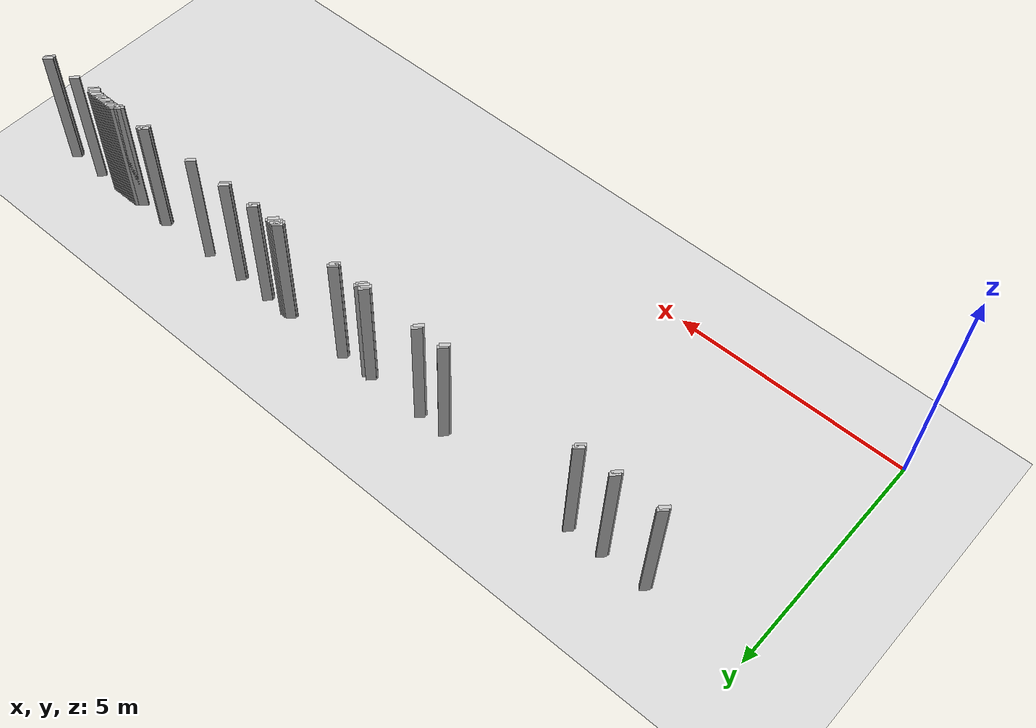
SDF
<sdf version="1.5">
 <world name="default">
  <include><uri>model://ground_plane</uri></include>
  <include><uri>model://sun</uri></include>
  <model name="grey_wall_3022">
   <static>1</static>
   <link name="link">
    <pose>14.25 5.050000000000001  1.4 0 0 -0.7853981633974483</pose>
    <collision name="collision">
     <geometry><box><size>0.07071067811865576 .2  2.8</size></box></geometry>
    </collision>
    <visual name="visual">
     <cast_shadows>0</cast_shadows>
     <geometry><box><size>0.07071067811865576 .2  2.8</size></box></geometry>
    </visual>
   </link>
  </model>
  <model name="grey_wall_3023">
   <static>1</static>
   <link name="link">
    <pose>14.3 5.050000000000001  1.4 0 0 -0.7853981633974483</pose>
    <collision name="collision">
     <geometry><box><size>0.07071067811865576 .2  2.8</size></box></geometry>
    </collision>
    <visual name="visual">
     <cast_shadows>0</cast_shadows>
     <geometry><box><size>0.07071067811865576 .2  2.8</size></box></geometry>
    </visual>
   </link>
  </model>
  <model name="grey_wall_3024">
   <static>1</static>
   <link name="link">
    <pose>15.05 5.050000000000001  1.4 0 0 -0.7853981633974483</pose>
    <collision name="collision">
     <geometry><box><size>0.07071067811865576 .2  2.8</size></box></geometry>
    </collision>
    <visual name="visual">
     <cast_shadows>0</cast_shadows>
     <geometry><box><size>0.07071067811865576 .2  2.8</size></box></geometry>
    </visual>
   </link>
  </model>
  <model name="grey_wall_3025">
   <static>1</static>
   <link name="link">
    <pose>15.100000000000001 5.050000000000001  1.4 0 0 -0.7853981633974483</pose>
    <collision name="collision">
     <geometry><box><size>0.07071067811865576 .2  2.8</size></box></geometry>
    </collision>
    <visual name="visual">
     <cast_shadows>0</cast_shadows>
     <geometry><box><size>0.07071067811865576 .2  2.8</size></box></geometry>
    </visual>
   </link>
  </model>
  <model name="grey_wall_3026">
   <static>1</static>
   <link name="link">
    <pose>15.15 5.050000000000001  1.4 0 0 -0.7853981633974483</pose>
    <collision name="collision">
     <geometry><box><size>0.07071067811865576 .2  2.8</size></box></geometry>
    </collision>
    <visual name="visual">
     <cast_shadows>0</cast_shadows>
     <geometry><box><size>0.07071067811865576 .2  2.8</size></box></geometry>
    </visual>
   </link>
  </model>
  <model name="grey_wall_3027">
   <static>1</static>
   <link name="link">
    <pose>15.200000000000001 5.050000000000001  1.4 0 0 -0.7853981633974483</pose>
    <collision name="collision">
     <geometry><box><size>0.07071067811865576 .2  2.8</size></box></geometry>
    </collision>
    <visual name="visual">
     <cast_shadows>0</cast_shadows>
     <geometry><box><size>0.07071067811865576 .2  2.8</size></box></geometry>
    </visual>
   </link>
  </model>
  <model name="grey_wall_3028">
   <static>1</static>
   <link name="link">
    <pose>15.25 5.050000000000001  1.4 0 0 -0.7853981633974483</pose>
    <collision name="collision">
     <geometry><box><size>0.07071067811865576 .2  2.8</size></box></geometry>
    </collision>
    <visual name="visual">
     <cast_shadows>0</cast_shadows>
     <geometry><box><size>0.07071067811865576 .2  2.8</size></box></geometry>
    </visual>
   </link>
  </model>
  <model name="grey_wall_3029">
   <static>1</static>
   <link name="link">
    <pose>15.3 5.050000000000001  1.4 0 0 -0.7853981633974483</pose>
    <collision name="collision">
     <geometry><box><size>0.07071067811865576 .2  2.8</size></box></geometry>
    </collision>
    <visual name="visual">
     <cast_shadows>0</cast_shadows>
     <geometry><box><size>0.07071067811865576 .2  2.8</size></box></geometry>
    </visual>
   </link>
  </model>
  <model name="grey_wall_3030">
   <static>1</static>
   <link name="link">
    <pose>15.350000000000001 5.050000000000001  1.4 0 0 -0.7853981633974483</pose>
    <collision name="collision">
     <geometry><box><size>0.07071067811865576 .2  2.8</size></box></geometry>
    </collision>
    <visual name="visual">
     <cast_shadows>0</cast_shadows>
     <geometry><box><size>0.07071067811865576 .2  2.8</size></box></geometry>
    </visual>
   </link>
  </model>
  <model name="grey_wall_3031">
   <static>1</static>
   <link name="link">
    <pose>15.4 5.050000000000001  1.4 0 0 -0.7853981633974483</pose>
    <collision name="collision">
     <geometry><box><size>0.07071067811865576 .2  2.8</size></box></geometry>
    </collision>
    <visual name="visual">
     <cast_shadows>0</cast_shadows>
     <geometry><box><size>0.07071067811865576 .2  2.8</size></box></geometry>
    </visual>
   </link>
  </model>
  <model name="grey_wall_3032">
   <static>1</static>
   <link name="link">
    <pose>15.450000000000001 5.050000000000001  1.4 0 0 -0.7853981633974483</pose>
    <collision name="collision">
     <geometry><box><size>0.07071067811865576 .2  2.8</size></box></geometry>
    </collision>
    <visual name="visual">
     <cast_shadows>0</cast_shadows>
     <geometry><box><size>0.07071067811865576 .2  2.8</size></box></geometry>
    </visual>
   </link>
  </model>
  <model name="grey_wall_3033">
   <static>1</static>
   <link name="link">
    <pose>15.5 5.050000000000001  1.4 0 0 -0.7853981633974483</pose>
    <collision name="collision">
     <geometry><box><size>0.07071067811865576 .2  2.8</size></box></geometry>
    </collision>
    <visual name="visual">
     <cast_shadows>0</cast_shadows>
     <geometry><box><size>0.07071067811865576 .2  2.8</size></box></geometry>
    </visual>
   </link>
  </model>
  <model name="grey_wall_3034">
   <static>1</static>
   <link name="link">
    <pose>15.55 5.050000000000001  1.4 0 0 -0.7853981633974483</pose>
    <collision name="collision">
     <geometry><box><size>0.07071067811865576 .2  2.8</size></box></geometry>
    </collision>
    <visual name="visual">
     <cast_shadows>0</cast_shadows>
     <geometry><box><size>0.07071067811865576 .2  2.8</size></box></geometry>
    </visual>
   </link>
  </model>
  <model name="grey_wall_3035">
   <static>1</static>
   <link name="link">
    <pose>15.600000000000001 5.050000000000001  1.4 0 0 -0.7853981633974483</pose>
    <collision name="collision">
     <geometry><box><size>0.07071067811865576 .2  2.8</size></box></geometry>
    </collision>
    <visual name="visual">
     <cast_shadows>0</cast_shadows>
     <geometry><box><size>0.07071067811865576 .2  2.8</size></box></geometry>
    </visual>
   </link>
  </model>
  <model name="grey_wall_3036">
   <static>1</static>
   <link name="link">
    <pose>15.65 5.050000000000001  1.4 0 0 -0.7853981633974483</pose>
    <collision name="collision">
     <geometry><box><size>0.07071067811865576 .2  2.8</size></box></geometry>
    </collision>
    <visual name="visual">
     <cast_shadows>0</cast_shadows>
     <geometry><box><size>0.07071067811865576 .2  2.8</size></box></geometry>
    </visual>
   </link>
  </model>
  <model name="grey_wall_3037">
   <static>1</static>
   <link name="link">
    <pose>15.700000000000001 5.050000000000001  1.4 0 0 -0.7853981633974483</pose>
    <collision name="collision">
     <geometry><box><size>0.07071067811865576 .2  2.8</size></box></geometry>
    </collision>
    <visual name="visual">
     <cast_shadows>0</cast_shadows>
     <geometry><box><size>0.07071067811865576 .2  2.8</size></box></geometry>
    </visual>
   </link>
  </model>
  <model name="grey_wall_3038">
   <static>1</static>
   <link name="link">
    <pose>16.25 5.050000000000001  1.4 0 0 -0.7853981633974838</pose>
    <collision name="collision">
     <geometry><box><size>0.07071067811865325 .2  2.8</size></box></geometry>
    </collision>
    <visual name="visual">
     <cast_shadows>0</cast_shadows>
     <geometry><box><size>0.07071067811865325 .2  2.8</size></box></geometry>
    </visual>
   </link>
  </model>
  <model name="grey_wall_3039">
   <static>1</static>
   <link name="link">
    <pose>17.05 5.050000000000001  1.4 0 0 -0.7853981633974838</pose>
    <collision name="collision">
     <geometry><box><size>0.07071067811865325 .2  2.8</size></box></geometry>
    </collision>
    <visual name="visual">
     <cast_shadows>0</cast_shadows>
     <geometry><box><size>0.07071067811865325 .2  2.8</size></box></geometry>
    </visual>
   </link>
  </model>
  <model name="grey_wall_3040">
   <static>1</static>
   <link name="link">
    <pose>2.0500000000000003 5.0  1.4 0 0 -0.7853981633974572</pose>
    <collision name="collision">
     <geometry><box><size>0.07071067811865513 .2  2.8</size></box></geometry>
    </collision>
    <visual name="visual">
     <cast_shadows>0</cast_shadows>
     <geometry><box><size>0.07071067811865513 .2  2.8</size></box></geometry>
    </visual>
   </link>
  </model>
  <model name="grey_wall_3041">
   <static>1</static>
   <link name="link">
    <pose>3.0 5.0  1.4 0 0 -0.7853981633974572</pose>
    <collision name="collision">
     <geometry><box><size>0.07071067811865513 .2  2.8</size></box></geometry>
    </collision>
    <visual name="visual">
     <cast_shadows>0</cast_shadows>
     <geometry><box><size>0.07071067811865513 .2  2.8</size></box></geometry>
    </visual>
   </link>
  </model>
  <model name="grey_wall_3042">
   <static>1</static>
   <link name="link">
    <pose>3.75 5.0  1.4 0 0 -0.7853981633974572</pose>
    <collision name="collision">
     <geometry><box><size>0.07071067811865513 .2  2.8</size></box></geometry>
    </collision>
    <visual name="visual">
     <cast_shadows>0</cast_shadows>
     <geometry><box><size>0.07071067811865513 .2  2.8</size></box></geometry>
    </visual>
   </link>
  </model>
  <model name="grey_wall_3043">
   <static>1</static>
   <link name="link">
    <pose>6.7 5.0  1.4 0 0 -0.7853981633974483</pose>
    <collision name="collision">
     <geometry><box><size>0.07071067811865576 .2  2.8</size></box></geometry>
    </collision>
    <visual name="visual">
     <cast_shadows>0</cast_shadows>
     <geometry><box><size>0.07071067811865576 .2  2.8</size></box></geometry>
    </visual>
   </link>
  </model>
  <model name="grey_wall_3044">
   <static>1</static>
   <link name="link">
    <pose>7.300000000000001 5.0  1.4 0 0 -0.7853981633974483</pose>
    <collision name="collision">
     <geometry><box><size>0.07071067811865576 .2  2.8</size></box></geometry>
    </collision>
    <visual name="visual">
     <cast_shadows>0</cast_shadows>
     <geometry><box><size>0.07071067811865576 .2  2.8</size></box></geometry>
    </visual>
   </link>
  </model>
  <model name="grey_wall_3045">
   <static>1</static>
   <link name="link">
    <pose>8.55 5.0  1.4 0 0 -0.7853981633974483</pose>
    <collision name="collision">
     <geometry><box><size>0.07071067811865576 .2  2.8</size></box></geometry>
    </collision>
    <visual name="visual">
     <cast_shadows>0</cast_shadows>
     <geometry><box><size>0.07071067811865576 .2  2.8</size></box></geometry>
    </visual>
   </link>
  </model>
  <model name="grey_wall_3046">
   <static>1</static>
   <link name="link">
    <pose>8.65 5.0  1.4 0 0 -0.7853981633974483</pose>
    <collision name="collision">
     <geometry><box><size>0.07071067811865576 .2  2.8</size></box></geometry>
    </collision>
    <visual name="visual">
     <cast_shadows>0</cast_shadows>
     <geometry><box><size>0.07071067811865576 .2  2.8</size></box></geometry>
    </visual>
   </link>
  </model>
  <model name="grey_wall_3047">
   <static>1</static>
   <link name="link">
    <pose>9.3 5.0  1.4 0 0 -0.7853981633974483</pose>
    <collision name="collision">
     <geometry><box><size>0.07071067811865576 .2  2.8</size></box></geometry>
    </collision>
    <visual name="visual">
     <cast_shadows>0</cast_shadows>
     <geometry><box><size>0.07071067811865576 .2  2.8</size></box></geometry>
    </visual>
   </link>
  </model>
  <model name="grey_wall_3048">
   <static>1</static>
   <link name="link">
    <pose>10.700000000000001 5.0  1.4 0 0 -0.7853981633974483</pose>
    <collision name="collision">
     <geometry><box><size>0.07071067811865576 .2  2.8</size></box></geometry>
    </collision>
    <visual name="visual">
     <cast_shadows>0</cast_shadows>
     <geometry><box><size>0.07071067811865576 .2  2.8</size></box></geometry>
    </visual>
   </link>
  </model>
  <model name="grey_wall_3049">
   <static>1</static>
   <link name="link">
    <pose>10.75 5.0  1.4 0 0 -0.7853981633974483</pose>
    <collision name="collision">
     <geometry><box><size>0.07071067811865576 .2  2.8</size></box></geometry>
    </collision>
    <visual name="visual">
     <cast_shadows>0</cast_shadows>
     <geometry><box><size>0.07071067811865576 .2  2.8</size></box></geometry>
    </visual>
   </link>
  </model>
  <model name="grey_wall_3050">
   <static>1</static>
   <link name="link">
    <pose>10.8 5.0  1.4 0 0 -0.7853981633974483</pose>
    <collision name="collision">
     <geometry><box><size>0.07071067811865576 .2  2.8</size></box></geometry>
    </collision>
    <visual name="visual">
     <cast_shadows>0</cast_shadows>
     <geometry><box><size>0.07071067811865576 .2  2.8</size></box></geometry>
    </visual>
   </link>
  </model>
  <model name="grey_wall_3051">
   <static>1</static>
   <link name="link">
    <pose>10.850000000000001 5.0  1.4 0 0 -0.7853981633974483</pose>
    <collision name="collision">
     <geometry><box><size>0.07071067811865576 .2  2.8</size></box></geometry>
    </collision>
    <visual name="visual">
     <cast_shadows>0</cast_shadows>
     <geometry><box><size>0.07071067811865576 .2  2.8</size></box></geometry>
    </visual>
   </link>
  </model>
  <model name="grey_wall_3052">
   <static>1</static>
   <link name="link">
    <pose>11.350000000000001 5.0  1.4 0 0 -0.7853981633974483</pose>
    <collision name="collision">
     <geometry><box><size>0.07071067811865576 .2  2.8</size></box></geometry>
    </collision>
    <visual name="visual">
     <cast_shadows>0</cast_shadows>
     <geometry><box><size>0.07071067811865576 .2  2.8</size></box></geometry>
    </visual>
   </link>
  </model>
  <model name="grey_wall_3053">
   <static>1</static>
   <link name="link">
    <pose>12.100000000000001 5.0  1.4 0 0 -0.7853981633974483</pose>
    <collision name="collision">
     <geometry><box><size>0.07071067811865576 .2  2.8</size></box></geometry>
    </collision>
    <visual name="visual">
     <cast_shadows>0</cast_shadows>
     <geometry><box><size>0.07071067811865576 .2  2.8</size></box></geometry>
    </visual>
   </link>
  </model>
  <model name="grey_wall_3054">
   <static>1</static>
   <link name="link">
    <pose>13.0 5.0  1.4 0 0 -0.7853981633974483</pose>
    <collision name="collision">
     <geometry><box><size>0.07071067811865576 .2  2.8</size></box></geometry>
    </collision>
    <visual name="visual">
     <cast_shadows>0</cast_shadows>
     <geometry><box><size>0.07071067811865576 .2  2.8</size></box></geometry>
    </visual>
   </link>
  </model>
  <model name="grey_wall_3055">
   <static>1</static>
   <link name="link">
    <pose>14.25 5.0  1.4 0 0 -0.7853981633974483</pose>
    <collision name="collision">
     <geometry><box><size>0.07071067811865576 .2  2.8</size></box></geometry>
    </collision>
    <visual name="visual">
     <cast_shadows>0</cast_shadows>
     <geometry><box><size>0.07071067811865576 .2  2.8</size></box></geometry>
    </visual>
   </link>
  </model>
  <model name="grey_wall_3056">
   <static>1</static>
   <link name="link">
    <pose>15.0 5.0  1.4 0 0 -0.7853981633974483</pose>
    <collision name="collision">
     <geometry><box><size>0.07071067811865576 .2  2.8</size></box></geometry>
    </collision>
    <visual name="visual">
     <cast_shadows>0</cast_shadows>
     <geometry><box><size>0.07071067811865576 .2  2.8</size></box></geometry>
    </visual>
   </link>
  </model>
  <model name="grey_wall_3057">
   <static>1</static>
   <link name="link">
    <pose>15.05 5.0  1.4 0 0 -0.7853981633974483</pose>
    <collision name="collision">
     <geometry><box><size>0.07071067811865576 .2  2.8</size></box></geometry>
    </collision>
    <visual name="visual">
     <cast_shadows>0</cast_shadows>
     <geometry><box><size>0.07071067811865576 .2  2.8</size></box></geometry>
    </visual>
   </link>
  </model>
  <model name="grey_wall_3058">
   <static>1</static>
   <link name="link">
    <pose>15.700000000000001 5.0  1.4 0 0 -0.7853981633974483</pose>
    <collision name="collision">
     <geometry><box><size>0.07071067811865576 .2  2.8</size></box></geometry>
    </collision>
    <visual name="visual">
     <cast_shadows>0</cast_shadows>
     <geometry><box><size>0.07071067811865576 .2  2.8</size></box></geometry>
    </visual>
   </link>
  </model>
  <model name="grey_wall_3059">
   <static>1</static>
   <link name="link">
    <pose>15.75 5.0  1.4 0 0 -0.7853981633974483</pose>
    <collision name="collision">
     <geometry><box><size>0.07071067811865576 .2  2.8</size></box></geometry>
    </collision>
    <visual name="visual">
     <cast_shadows>0</cast_shadows>
     <geometry><box><size>0.07071067811865576 .2  2.8</size></box></geometry>
    </visual>
   </link>
  </model>
  <model name="grey_wall_3060">
   <static>1</static>
   <link name="link">
    <pose>17.05 5.0  1.4 0 0 -0.7853981633974838</pose>
    <collision name="collision">
     <geometry><box><size>0.07071067811865325 .2  2.8</size></box></geometry>
    </collision>
    <visual name="visual">
     <cast_shadows>0</cast_shadows>
     <geometry><box><size>0.07071067811865325 .2  2.8</size></box></geometry>
    </visual>
   </link>
  </model>
  <model name="grey_wall_3061">
   <static>1</static>
   <link name="link">
    <pose>2.0500000000000003 4.95  1.4 0 0 -0.7853981633974572</pose>
    <collision name="collision">
     <geometry><box><size>0.07071067811865513 .2  2.8</size></box></geometry>
    </collision>
    <visual name="visual">
     <cast_shadows>0</cast_shadows>
     <geometry><box><size>0.07071067811865513 .2  2.8</size></box></geometry>
    </visual>
   </link>
  </model>
  <model name="grey_wall_3062">
   <static>1</static>
   <link name="link">
    <pose>3.0 4.95  1.4 0 0 -0.7853981633974572</pose>
    <collision name="collision">
     <geometry><box><size>0.07071067811865513 .2  2.8</size></box></geometry>
    </collision>
    <visual name="visual">
     <cast_shadows>0</cast_shadows>
     <geometry><box><size>0.07071067811865513 .2  2.8</size></box></geometry>
    </visual>
   </link>
  </model>
  <model name="grey_wall_3063">
   <static>1</static>
   <link name="link">
    <pose>3.75 4.95  1.4 0 0 -0.7853981633974572</pose>
    <collision name="collision">
     <geometry><box><size>0.07071067811865513 .2  2.8</size></box></geometry>
    </collision>
    <visual name="visual">
     <cast_shadows>0</cast_shadows>
     <geometry><box><size>0.07071067811865513 .2  2.8</size></box></geometry>
    </visual>
   </link>
  </model>
  <model name="grey_wall_3064">
   <static>1</static>
   <link name="link">
    <pose>6.7 4.95  1.4 0 0 -0.7853981633974483</pose>
    <collision name="collision">
     <geometry><box><size>0.07071067811865576 .2  2.8</size></box></geometry>
    </collision>
    <visual name="visual">
     <cast_shadows>0</cast_shadows>
     <geometry><box><size>0.07071067811865576 .2  2.8</size></box></geometry>
    </visual>
   </link>
  </model>
  <model name="grey_wall_3065">
   <static>1</static>
   <link name="link">
    <pose>7.300000000000001 4.95  1.4 0 0 -0.7853981633974483</pose>
    <collision name="collision">
     <geometry><box><size>0.07071067811865576 .2  2.8</size></box></geometry>
    </collision>
    <visual name="visual">
     <cast_shadows>0</cast_shadows>
     <geometry><box><size>0.07071067811865576 .2  2.8</size></box></geometry>
    </visual>
   </link>
  </model>
  <model name="grey_wall_3066">
   <static>1</static>
   <link name="link">
    <pose>8.55 4.95  1.4 0 0 -0.7853981633974483</pose>
    <collision name="collision">
     <geometry><box><size>0.07071067811865576 .2  2.8</size></box></geometry>
    </collision>
    <visual name="visual">
     <cast_shadows>0</cast_shadows>
     <geometry><box><size>0.07071067811865576 .2  2.8</size></box></geometry>
    </visual>
   </link>
  </model>
  <model name="grey_wall_3067">
   <static>1</static>
   <link name="link">
    <pose>8.6 4.95  1.4 0 0 -0.7853981633974483</pose>
    <collision name="collision">
     <geometry><box><size>0.07071067811865576 .2  2.8</size></box></geometry>
    </collision>
    <visual name="visual">
     <cast_shadows>0</cast_shadows>
     <geometry><box><size>0.07071067811865576 .2  2.8</size></box></geometry>
    </visual>
   </link>
  </model>
  <model name="grey_wall_3068">
   <static>1</static>
   <link name="link">
    <pose>8.65 4.95  1.4 0 0 -0.7853981633974483</pose>
    <collision name="collision">
     <geometry><box><size>0.07071067811865576 .2  2.8</size></box></geometry>
    </collision>
    <visual name="visual">
     <cast_shadows>0</cast_shadows>
     <geometry><box><size>0.07071067811865576 .2  2.8</size></box></geometry>
    </visual>
   </link>
  </model>
  <model name="grey_wall_3069">
   <static>1</static>
   <link name="link">
    <pose>9.3 4.95  1.4 0 0 -0.7853981633974483</pose>
    <collision name="collision">
     <geometry><box><size>0.07071067811865576 .2  2.8</size></box></geometry>
    </collision>
    <visual name="visual">
     <cast_shadows>0</cast_shadows>
     <geometry><box><size>0.07071067811865576 .2  2.8</size></box></geometry>
    </visual>
   </link>
  </model>
  <model name="grey_wall_3070">
   <static>1</static>
   <link name="link">
    <pose>10.700000000000001 4.95  1.4 0 0 -0.7853981633974483</pose>
    <collision name="collision">
     <geometry><box><size>0.07071067811865576 .2  2.8</size></box></geometry>
    </collision>
    <visual name="visual">
     <cast_shadows>0</cast_shadows>
     <geometry><box><size>0.07071067811865576 .2  2.8</size></box></geometry>
    </visual>
   </link>
  </model>
  <model name="grey_wall_3071">
   <static>1</static>
   <link name="link">
    <pose>10.75 4.95  1.4 0 0 -0.7853981633974483</pose>
    <collision name="collision">
     <geometry><box><size>0.07071067811865576 .2  2.8</size></box></geometry>
    </collision>
    <visual name="visual">
     <cast_shadows>0</cast_shadows>
     <geometry><box><size>0.07071067811865576 .2  2.8</size></box></geometry>
    </visual>
   </link>
  </model>
  <model name="grey_wall_3072">
   <static>1</static>
   <link name="link">
    <pose>10.850000000000001 4.95  1.4 0 0 -0.7853981633974483</pose>
    <collision name="collision">
     <geometry><box><size>0.07071067811865576 .2  2.8</size></box></geometry>
    </collision>
    <visual name="visual">
     <cast_shadows>0</cast_shadows>
     <geometry><box><size>0.07071067811865576 .2  2.8</size></box></geometry>
    </visual>
   </link>
  </model>
  <model name="grey_wall_3073">
   <static>1</static>
   <link name="link">
    <pose>11.350000000000001 4.95  1.4 0 0 -0.7853981633974483</pose>
    <collision name="collision">
     <geometry><box><size>0.07071067811865576 .2  2.8</size></box></geometry>
    </collision>
    <visual name="visual">
     <cast_shadows>0</cast_shadows>
     <geometry><box><size>0.07071067811865576 .2  2.8</size></box></geometry>
    </visual>
   </link>
  </model>
  <model name="grey_wall_3074">
   <static>1</static>
   <link name="link">
    <pose>12.100000000000001 4.95  1.4 0 0 -0.7853981633974483</pose>
    <collision name="collision">
     <geometry><box><size>0.07071067811865576 .2  2.8</size></box></geometry>
    </collision>
    <visual name="visual">
     <cast_shadows>0</cast_shadows>
     <geometry><box><size>0.07071067811865576 .2  2.8</size></box></geometry>
    </visual>
   </link>
  </model>
 </world>
</sdf>
